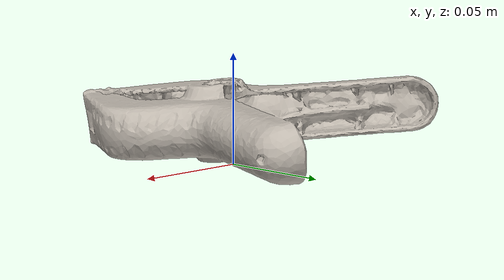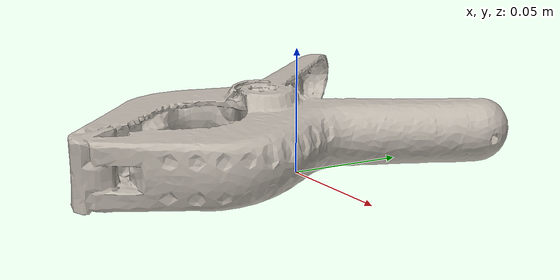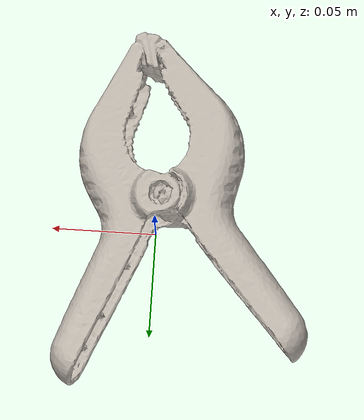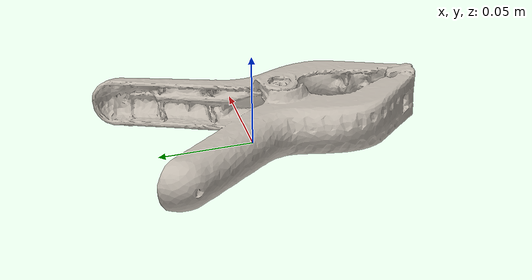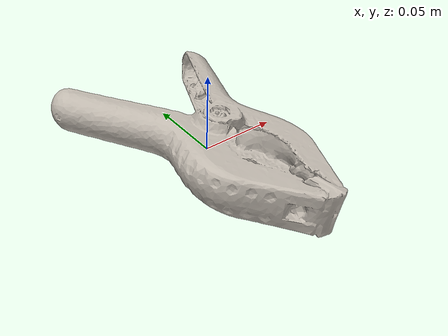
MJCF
<mujoco model="large_clamp">
  <compiler angle="radian" meshdir="assets" texturedir="assets"/>
    <default>
        <default class="ycb_col">
            <geom contype="1" conaffinity="1" group="3" rgba=".4 .5 .6 1"/>
        </default>
        <default class="ycb_viz">
            <geom contype="0" conaffinity="0" type="mesh" mass="0"/>
        </default>
    </default>
  <asset>
    <texture type="2d" name="large_clamp_tex" file="texture_map.png"/>
    <material name="large_clamp_mat" texture="large_clamp_tex" specular="0.5" shininess="0.5"/>
    <mesh file="textured.obj" name="large_clamp"/>
    <mesh file="textured_collision_0.obj" name="large_clamp_collision_0"/>
    <mesh file="textured_collision_1.obj" name="large_clamp_collision_1"/>
    <mesh file="textured_collision_2.obj" name="large_clamp_collision_2"/>
    <mesh file="textured_collision_3.obj" name="large_clamp_collision_3"/>
    <mesh file="textured_collision_4.obj" name="large_clamp_collision_4"/>
    <mesh file="textured_collision_5.obj" name="large_clamp_collision_5"/>
    <mesh file="textured_collision_6.obj" name="large_clamp_collision_6"/>
    <mesh file="textured_collision_7.obj" name="large_clamp_collision_7"/>
    <mesh file="textured_collision_8.obj" name="large_clamp_collision_8"/>
    <mesh file="textured_collision_9.obj" name="large_clamp_collision_9"/>
    <mesh file="textured_collision_10.obj" name="large_clamp_collision_10"/>
    <mesh file="textured_collision_11.obj" name="large_clamp_collision_11"/>
    <mesh file="textured_collision_12.obj" name="large_clamp_collision_12"/>
    <mesh file="textured_collision_13.obj" name="large_clamp_collision_13"/>
    <mesh file="textured_collision_14.obj" name="large_clamp_collision_14"/>
    <mesh file="textured_collision_15.obj" name="large_clamp_collision_15"/>
    <mesh file="textured_collision_16.obj" name="large_clamp_collision_16"/>
    <mesh file="textured_collision_17.obj" name="large_clamp_collision_17"/>
    <mesh file="textured_collision_18.obj" name="large_clamp_collision_18"/>
    <mesh file="textured_collision_19.obj" name="large_clamp_collision_19"/>
    <mesh file="textured_collision_20.obj" name="large_clamp_collision_20"/>
    <mesh file="textured_collision_21.obj" name="large_clamp_collision_21"/>
    <mesh file="textured_collision_22.obj" name="large_clamp_collision_22"/>
    <mesh file="textured_collision_23.obj" name="large_clamp_collision_23"/>
    <mesh file="textured_collision_24.obj" name="large_clamp_collision_24"/>
    <mesh file="textured_collision_25.obj" name="large_clamp_collision_25"/>
    <mesh file="textured_collision_26.obj" name="large_clamp_collision_26"/>
    <mesh file="textured_collision_27.obj" name="large_clamp_collision_27"/>
    <mesh file="textured_collision_28.obj" name="large_clamp_collision_28"/>
    <mesh file="textured_collision_29.obj" name="large_clamp_collision_29"/>
    <mesh file="textured_collision_30.obj" name="large_clamp_collision_30"/>
    <mesh file="textured_collision_31.obj" name="large_clamp_collision_31"/>
    <mesh file="textured_collision_32.obj" name="large_clamp_collision_32"/>
    <mesh file="textured_collision_33.obj" name="large_clamp_collision_33"/>
    <mesh file="textured_collision_34.obj" name="large_clamp_collision_34"/>
    <mesh file="textured_collision_35.obj" name="large_clamp_collision_35"/>
    <mesh file="textured_collision_36.obj" name="large_clamp_collision_36"/>
    <mesh file="textured_collision_37.obj" name="large_clamp_collision_37"/>
    <mesh file="textured_collision_38.obj" name="large_clamp_collision_38"/>
    <mesh file="textured_collision_39.obj" name="large_clamp_collision_39"/>
    <mesh file="textured_collision_40.obj" name="large_clamp_collision_40"/>
    <mesh file="textured_collision_41.obj" name="large_clamp_collision_41"/>
    <mesh file="textured_collision_42.obj" name="large_clamp_collision_42"/>
    <mesh file="textured_collision_43.obj" name="large_clamp_collision_43"/>
    <mesh file="textured_collision_44.obj" name="large_clamp_collision_44"/>
    <mesh file="textured_collision_45.obj" name="large_clamp_collision_45"/>
    <mesh file="textured_collision_46.obj" name="large_clamp_collision_46"/>
    <mesh file="textured_collision_47.obj" name="large_clamp_collision_47"/>
    <mesh file="textured_collision_48.obj" name="large_clamp_collision_48"/>
    <mesh file="textured_collision_49.obj" name="large_clamp_collision_49"/>
    <mesh file="textured_collision_50.obj" name="large_clamp_collision_50"/>
    <mesh file="textured_collision_51.obj" name="large_clamp_collision_51"/>
    <mesh file="textured_collision_52.obj" name="large_clamp_collision_52"/>
    <mesh file="textured_collision_53.obj" name="large_clamp_collision_53"/>
    <mesh file="textured_collision_54.obj" name="large_clamp_collision_54"/>
    <mesh file="textured_collision_55.obj" name="large_clamp_collision_55"/>
    <mesh file="textured_collision_56.obj" name="large_clamp_collision_56"/>
    <mesh file="textured_collision_57.obj" name="large_clamp_collision_57"/>
    <mesh file="textured_collision_58.obj" name="large_clamp_collision_58"/>
    <mesh file="textured_collision_59.obj" name="large_clamp_collision_59"/>
    <mesh file="textured_collision_60.obj" name="large_clamp_collision_60"/>
    <mesh file="textured_collision_61.obj" name="large_clamp_collision_61"/>
    <mesh file="textured_collision_62.obj" name="large_clamp_collision_62"/>
    <mesh file="textured_collision_63.obj" name="large_clamp_collision_63"/>
    <mesh file="textured_collision_64.obj" name="large_clamp_collision_64"/>
  </asset>
  <worldbody>
      <geom material="large_clamp_mat" mesh="large_clamp" class="ycb_viz"/>
      <geom mesh="large_clamp_collision_0" class="ycb_col" conaffinity="1" condim="4" friction="0.1 0.1 0.1" mass="0.004121025993384042" rgba="1 1 1 1" solimp="0.99 0.99 0.01" solref=".001 0.1" type="mesh" group="3"/>
      <geom mesh="large_clamp_collision_1" class="ycb_col" conaffinity="1" condim="4" friction="0.1 0.1 0.1" mass="0.0018808637484429335" rgba="1 1 1 1" solimp="0.99 0.99 0.01" solref=".001 0.1" type="mesh" group="3"/>
      <geom mesh="large_clamp_collision_2" class="ycb_col" conaffinity="1" condim="4" friction="0.1 0.1 0.1" mass="0.0015954781302884079" rgba="1 1 1 1" solimp="0.99 0.99 0.01" solref=".001 0.1" type="mesh" group="3"/>
      <geom mesh="large_clamp_collision_3" class="ycb_col" conaffinity="1" condim="4" friction="0.1 0.1 0.1" mass="0.0006759174076240397" rgba="1 1 1 1" solimp="0.99 0.99 0.01" solref=".001 0.1" type="mesh" group="3"/>
      <geom mesh="large_clamp_collision_4" class="ycb_col" conaffinity="1" condim="4" friction="0.1 0.1 0.1" mass="0.0037227176940070666" rgba="1 1 1 1" solimp="0.99 0.99 0.01" solref=".001 0.1" type="mesh" group="3"/>
      <geom mesh="large_clamp_collision_5" class="ycb_col" conaffinity="1" condim="4" friction="0.1 0.1 0.1" mass="0.001605520141420708" rgba="1 1 1 1" solimp="0.99 0.99 0.01" solref=".001 0.1" type="mesh" group="3"/>
      <geom mesh="large_clamp_collision_6" class="ycb_col" conaffinity="1" condim="4" friction="0.1 0.1 0.1" mass="0.0008982489395089153" rgba="1 1 1 1" solimp="0.99 0.99 0.01" solref=".001 0.1" type="mesh" group="3"/>
      <geom mesh="large_clamp_collision_7" class="ycb_col" conaffinity="1" condim="4" friction="0.1 0.1 0.1" mass="0.004182483312490097" rgba="1 1 1 1" solimp="0.99 0.99 0.01" solref=".001 0.1" type="mesh" group="3"/>
      <geom mesh="large_clamp_collision_8" class="ycb_col" conaffinity="1" condim="4" friction="0.1 0.1 0.1" mass="0.0032456995136367047" rgba="1 1 1 1" solimp="0.99 0.99 0.01" solref=".001 0.1" type="mesh" group="3"/>
      <geom mesh="large_clamp_collision_9" class="ycb_col" conaffinity="1" condim="4" friction="0.1 0.1 0.1" mass="0.001067969811145475" rgba="1 1 1 1" solimp="0.99 0.99 0.01" solref=".001 0.1" type="mesh" group="3"/>
      <geom mesh="large_clamp_collision_10" class="ycb_col" conaffinity="1" condim="4" friction="0.1 0.1 0.1" mass="0.0025896231321667807" rgba="1 1 1 1" solimp="0.99 0.99 0.01" solref=".001 0.1" type="mesh" group="3"/>
      <geom mesh="large_clamp_collision_11" class="ycb_col" conaffinity="1" condim="4" friction="0.1 0.1 0.1" mass="0.0006217936695916491" rgba="1 1 1 1" solimp="0.99 0.99 0.01" solref=".001 0.1" type="mesh" group="3"/>
      <geom mesh="large_clamp_collision_12" class="ycb_col" conaffinity="1" condim="4" friction="0.1 0.1 0.1" mass="0.005758098222830351" rgba="1 1 1 1" solimp="0.99 0.99 0.01" solref=".001 0.1" type="mesh" group="3"/>
      <geom mesh="large_clamp_collision_13" class="ycb_col" conaffinity="1" condim="4" friction="0.1 0.1 0.1" mass="0.002739103905293996" rgba="1 1 1 1" solimp="0.99 0.99 0.01" solref=".001 0.1" type="mesh" group="3"/>
      <geom mesh="large_clamp_collision_14" class="ycb_col" conaffinity="1" condim="4" friction="0.1 0.1 0.1" mass="0.0016821457212562805" rgba="1 1 1 1" solimp="0.99 0.99 0.01" solref=".001 0.1" type="mesh" group="3"/>
      <geom mesh="large_clamp_collision_15" class="ycb_col" conaffinity="1" condim="4" friction="0.1 0.1 0.1" mass="0.0019533867676068167" rgba="1 1 1 1" solimp="0.99 0.99 0.01" solref=".001 0.1" type="mesh" group="3"/>
      <geom mesh="large_clamp_collision_16" class="ycb_col" conaffinity="1" condim="4" friction="0.1 0.1 0.1" mass="0.0027249206869811946" rgba="1 1 1 1" solimp="0.99 0.99 0.01" solref=".001 0.1" type="mesh" group="3"/>
      <geom mesh="large_clamp_collision_17" class="ycb_col" conaffinity="1" condim="4" friction="0.1 0.1 0.1" mass="0.002126228914498059" rgba="1 1 1 1" solimp="0.99 0.99 0.01" solref=".001 0.1" type="mesh" group="3"/>
      <geom mesh="large_clamp_collision_18" class="ycb_col" conaffinity="1" condim="4" friction="0.1 0.1 0.1" mass="0.0006938328983704978" rgba="1 1 1 1" solimp="0.99 0.99 0.01" solref=".001 0.1" type="mesh" group="3"/>
      <geom mesh="large_clamp_collision_19" class="ycb_col" conaffinity="1" condim="4" friction="0.1 0.1 0.1" mass="0.00016054670196166354" rgba="1 1 1 1" solimp="0.99 0.99 0.01" solref=".001 0.1" type="mesh" group="3"/>
      <geom mesh="large_clamp_collision_20" class="ycb_col" conaffinity="1" condim="4" friction="0.1 0.1 0.1" mass="0.002549254633168651" rgba="1 1 1 1" solimp="0.99 0.99 0.01" solref=".001 0.1" type="mesh" group="3"/>
      <geom mesh="large_clamp_collision_21" class="ycb_col" conaffinity="1" condim="4" friction="0.1 0.1 0.1" mass="0.0009317258723486168" rgba="1 1 1 1" solimp="0.99 0.99 0.01" solref=".001 0.1" type="mesh" group="3"/>
      <geom mesh="large_clamp_collision_22" class="ycb_col" conaffinity="1" condim="4" friction="0.1 0.1 0.1" mass="0.0006612492993655526" rgba="1 1 1 1" solimp="0.99 0.99 0.01" solref=".001 0.1" type="mesh" group="3"/>
      <geom mesh="large_clamp_collision_23" class="ycb_col" conaffinity="1" condim="4" friction="0.1 0.1 0.1" mass="0.0006166829311222367" rgba="1 1 1 1" solimp="0.99 0.99 0.01" solref=".001 0.1" type="mesh" group="3"/>
      <geom mesh="large_clamp_collision_24" class="ycb_col" conaffinity="1" condim="4" friction="0.1 0.1 0.1" mass="0.0006155170303539363" rgba="1 1 1 1" solimp="0.99 0.99 0.01" solref=".001 0.1" type="mesh" group="3"/>
      <geom mesh="large_clamp_collision_25" class="ycb_col" conaffinity="1" condim="4" friction="0.1 0.1 0.1" mass="0.0020722871141963207" rgba="1 1 1 1" solimp="0.99 0.99 0.01" solref=".001 0.1" type="mesh" group="3"/>
      <geom mesh="large_clamp_collision_26" class="ycb_col" conaffinity="1" condim="4" friction="0.1 0.1 0.1" mass="0.004050709349111325" rgba="1 1 1 1" solimp="0.99 0.99 0.01" solref=".001 0.1" type="mesh" group="3"/>
      <geom mesh="large_clamp_collision_27" class="ycb_col" conaffinity="1" condim="4" friction="0.1 0.1 0.1" mass="4.637702462894769e-05" rgba="1 1 1 1" solimp="0.99 0.99 0.01" solref=".001 0.1" type="mesh" group="3"/>
      <geom mesh="large_clamp_collision_28" class="ycb_col" conaffinity="1" condim="4" friction="0.1 0.1 0.1" mass="0.003156110195086801" rgba="1 1 1 1" solimp="0.99 0.99 0.01" solref=".001 0.1" type="mesh" group="3"/>
      <geom mesh="large_clamp_collision_29" class="ycb_col" conaffinity="1" condim="4" friction="0.1 0.1 0.1" mass="0.0024461827087143236" rgba="1 1 1 1" solimp="0.99 0.99 0.01" solref=".001 0.1" type="mesh" group="3"/>
      <geom mesh="large_clamp_collision_30" class="ycb_col" conaffinity="1" condim="4" friction="0.1 0.1 0.1" mass="0.0007425429772158847" rgba="1 1 1 1" solimp="0.99 0.99 0.01" solref=".001 0.1" type="mesh" group="3"/>
      <geom mesh="large_clamp_collision_31" class="ycb_col" conaffinity="1" condim="4" friction="0.1 0.1 0.1" mass="0.004631875436762093" rgba="1 1 1 1" solimp="0.99 0.99 0.01" solref=".001 0.1" type="mesh" group="3"/>
      <geom mesh="large_clamp_collision_32" class="ycb_col" conaffinity="1" condim="4" friction="0.1 0.1 0.1" mass="0.008074308918759671" rgba="1 1 1 1" solimp="0.99 0.99 0.01" solref=".001 0.1" type="mesh" group="3"/>
      <geom mesh="large_clamp_collision_33" class="ycb_col" conaffinity="1" condim="4" friction="0.1 0.1 0.1" mass="0.0038848225200143463" rgba="1 1 1 1" solimp="0.99 0.99 0.01" solref=".001 0.1" type="mesh" group="3"/>
      <geom mesh="large_clamp_collision_34" class="ycb_col" conaffinity="1" condim="4" friction="0.1 0.1 0.1" mass="3.529883752138165e-05" rgba="1 1 1 1" solimp="0.99 0.99 0.01" solref=".001 0.1" type="mesh" group="3"/>
      <geom mesh="large_clamp_collision_35" class="ycb_col" conaffinity="1" condim="4" friction="0.1 0.1 0.1" mass="0.0017540693202243707" rgba="1 1 1 1" solimp="0.99 0.99 0.01" solref=".001 0.1" type="mesh" group="3"/>
      <geom mesh="large_clamp_collision_36" class="ycb_col" conaffinity="1" condim="4" friction="0.1 0.1 0.1" mass="0.0014727110333683953" rgba="1 1 1 1" solimp="0.99 0.99 0.01" solref=".001 0.1" type="mesh" group="3"/>
      <geom mesh="large_clamp_collision_37" class="ycb_col" conaffinity="1" condim="4" friction="0.1 0.1 0.1" mass="0.0003806928164464758" rgba="1 1 1 1" solimp="0.99 0.99 0.01" solref=".001 0.1" type="mesh" group="3"/>
      <geom mesh="large_clamp_collision_38" class="ycb_col" conaffinity="1" condim="4" friction="0.1 0.1 0.1" mass="0.00136557396669065" rgba="1 1 1 1" solimp="0.99 0.99 0.01" solref=".001 0.1" type="mesh" group="3"/>
      <geom mesh="large_clamp_collision_39" class="ycb_col" conaffinity="1" condim="4" friction="0.1 0.1 0.1" mass="0.00040677009860267554" rgba="1 1 1 1" solimp="0.99 0.99 0.01" solref=".001 0.1" type="mesh" group="3"/>
      <geom mesh="large_clamp_collision_40" class="ycb_col" conaffinity="1" condim="4" friction="0.1 0.1 0.1" mass="0.0035152910776157526" rgba="1 1 1 1" solimp="0.99 0.99 0.01" solref=".001 0.1" type="mesh" group="3"/>
      <geom mesh="large_clamp_collision_41" class="ycb_col" conaffinity="1" condim="4" friction="0.1 0.1 0.1" mass="0.0009560622020863082" rgba="1 1 1 1" solimp="0.99 0.99 0.01" solref=".001 0.1" type="mesh" group="3"/>
      <geom mesh="large_clamp_collision_42" class="ycb_col" conaffinity="1" condim="4" friction="0.1 0.1 0.1" mass="0.001373934708494234" rgba="1 1 1 1" solimp="0.99 0.99 0.01" solref=".001 0.1" type="mesh" group="3"/>
      <geom mesh="large_clamp_collision_43" class="ycb_col" conaffinity="1" condim="4" friction="0.1 0.1 0.1" mass="0.0015511183061916389" rgba="1 1 1 1" solimp="0.99 0.99 0.01" solref=".001 0.1" type="mesh" group="3"/>
      <geom mesh="large_clamp_collision_44" class="ycb_col" conaffinity="1" condim="4" friction="0.1 0.1 0.1" mass="0.00135947965467473" rgba="1 1 1 1" solimp="0.99 0.99 0.01" solref=".001 0.1" type="mesh" group="3"/>
      <geom mesh="large_clamp_collision_45" class="ycb_col" conaffinity="1" condim="4" friction="0.1 0.1 0.1" mass="0.0004124374034087201" rgba="1 1 1 1" solimp="0.99 0.99 0.01" solref=".001 0.1" type="mesh" group="3"/>
      <geom mesh="large_clamp_collision_46" class="ycb_col" conaffinity="1" condim="4" friction="0.1 0.1 0.1" mass="0.0006178346510482827" rgba="1 1 1 1" solimp="0.99 0.99 0.01" solref=".001 0.1" type="mesh" group="3"/>
      <geom mesh="large_clamp_collision_47" class="ycb_col" conaffinity="1" condim="4" friction="0.1 0.1 0.1" mass="0.001942286570556716" rgba="1 1 1 1" solimp="0.99 0.99 0.01" solref=".001 0.1" type="mesh" group="3"/>
      <geom mesh="large_clamp_collision_48" class="ycb_col" conaffinity="1" condim="4" friction="0.1 0.1 0.1" mass="0.001302107993065361" rgba="1 1 1 1" solimp="0.99 0.99 0.01" solref=".001 0.1" type="mesh" group="3"/>
      <geom mesh="large_clamp_collision_49" class="ycb_col" conaffinity="1" condim="4" friction="0.1 0.1 0.1" mass="0.00036641221755692976" rgba="1 1 1 1" solimp="0.99 0.99 0.01" solref=".001 0.1" type="mesh" group="3"/>
      <geom mesh="large_clamp_collision_50" class="ycb_col" conaffinity="1" condim="4" friction="0.1 0.1 0.1" mass="0.0018581725507177144" rgba="1 1 1 1" solimp="0.99 0.99 0.01" solref=".001 0.1" type="mesh" group="3"/>
      <geom mesh="large_clamp_collision_51" class="ycb_col" conaffinity="1" condim="4" friction="0.1 0.1 0.1" mass="0.0014087138366675395" rgba="1 1 1 1" solimp="0.99 0.99 0.01" solref=".001 0.1" type="mesh" group="3"/>
      <geom mesh="large_clamp_collision_52" class="ycb_col" conaffinity="1" condim="4" friction="0.1 0.1 0.1" mass="0.0013961648589002097" rgba="1 1 1 1" solimp="0.99 0.99 0.01" solref=".001 0.1" type="mesh" group="3"/>
      <geom mesh="large_clamp_collision_53" class="ycb_col" conaffinity="1" condim="4" friction="0.1 0.1 0.1" mass="0.0004912332517508279" rgba="1 1 1 1" solimp="0.99 0.99 0.01" solref=".001 0.1" type="mesh" group="3"/>
      <geom mesh="large_clamp_collision_54" class="ycb_col" conaffinity="1" condim="4" friction="0.1 0.1 0.1" mass="0.0003208519995364841" rgba="1 1 1 1" solimp="0.99 0.99 0.01" solref=".001 0.1" type="mesh" group="3"/>
      <geom mesh="large_clamp_collision_55" class="ycb_col" conaffinity="1" condim="4" friction="0.1 0.1 0.1" mass="0.0011706030022516193" rgba="1 1 1 1" solimp="0.99 0.99 0.01" solref=".001 0.1" type="mesh" group="3"/>
      <geom mesh="large_clamp_collision_56" class="ycb_col" conaffinity="1" condim="4" friction="0.1 0.1 0.1" mass="0.0039607972816752685" rgba="1 1 1 1" solimp="0.99 0.99 0.01" solref=".001 0.1" type="mesh" group="3"/>
      <geom mesh="large_clamp_collision_57" class="ycb_col" conaffinity="1" condim="4" friction="0.1 0.1 0.1" mass="0.0013027743112694389" rgba="1 1 1 1" solimp="0.99 0.99 0.01" solref=".001 0.1" type="mesh" group="3"/>
      <geom mesh="large_clamp_collision_58" class="ycb_col" conaffinity="1" condim="4" friction="0.1 0.1 0.1" mass="0.0008142432449460703" rgba="1 1 1 1" solimp="0.99 0.99 0.01" solref=".001 0.1" type="mesh" group="3"/>
      <geom mesh="large_clamp_collision_59" class="ycb_col" conaffinity="1" condim="4" friction="0.1 0.1 0.1" mass="0.004474101505499106" rgba="1 1 1 1" solimp="0.99 0.99 0.01" solref=".001 0.1" type="mesh" group="3"/>
      <geom mesh="large_clamp_collision_60" class="ycb_col" conaffinity="1" condim="4" friction="0.1 0.1 0.1" mass="0.00151723300840956" rgba="1 1 1 1" solimp="0.99 0.99 0.01" solref=".001 0.1" type="mesh" group="3"/>
      <geom mesh="large_clamp_collision_61" class="ycb_col" conaffinity="1" condim="4" friction="0.1 0.1 0.1" mass="0.0002566338326322637" rgba="1 1 1 1" solimp="0.99 0.99 0.01" solref=".001 0.1" type="mesh" group="3"/>
      <geom mesh="large_clamp_collision_62" class="ycb_col" conaffinity="1" condim="4" friction="0.1 0.1 0.1" mass="0.0020845298837286015" rgba="1 1 1 1" solimp="0.99 0.99 0.01" solref=".001 0.1" type="mesh" group="3"/>
      <geom mesh="large_clamp_collision_63" class="ycb_col" conaffinity="1" condim="4" friction="0.1 0.1 0.1" mass="0.001921728229054872" rgba="1 1 1 1" solimp="0.99 0.99 0.01" solref=".001 0.1" type="mesh" group="3"/>
      <geom mesh="large_clamp_collision_64" class="ycb_col" conaffinity="1" condim="4" friction="0.1 0.1 0.1" mass="0.004684887022053417" rgba="1 1 1 1" solimp="0.99 0.99 0.01" solref=".001 0.1" type="mesh" group="3"/>
  </worldbody>
</mujoco>
